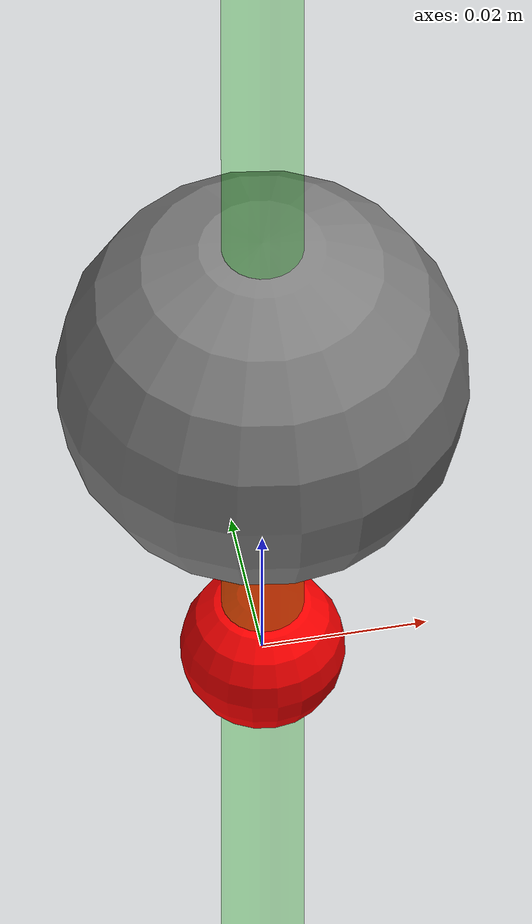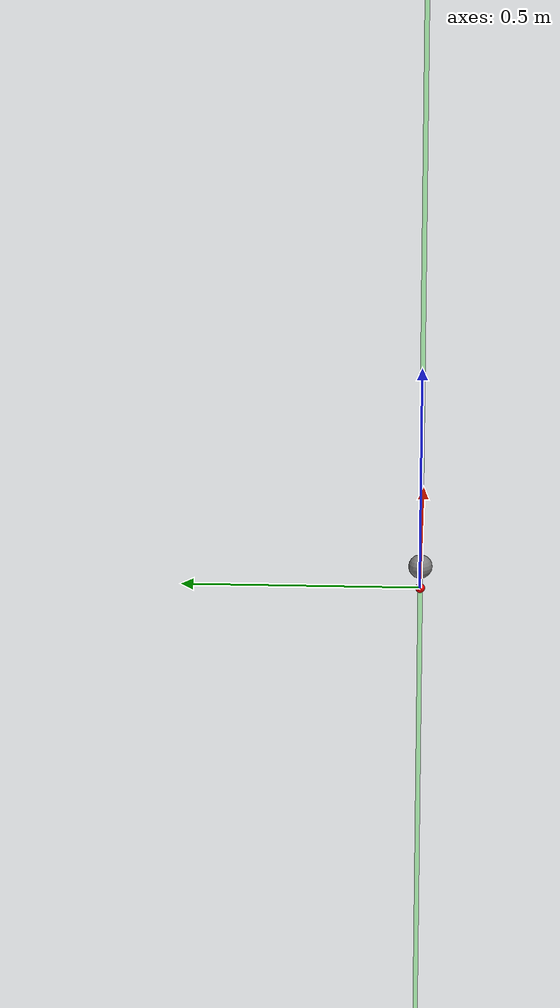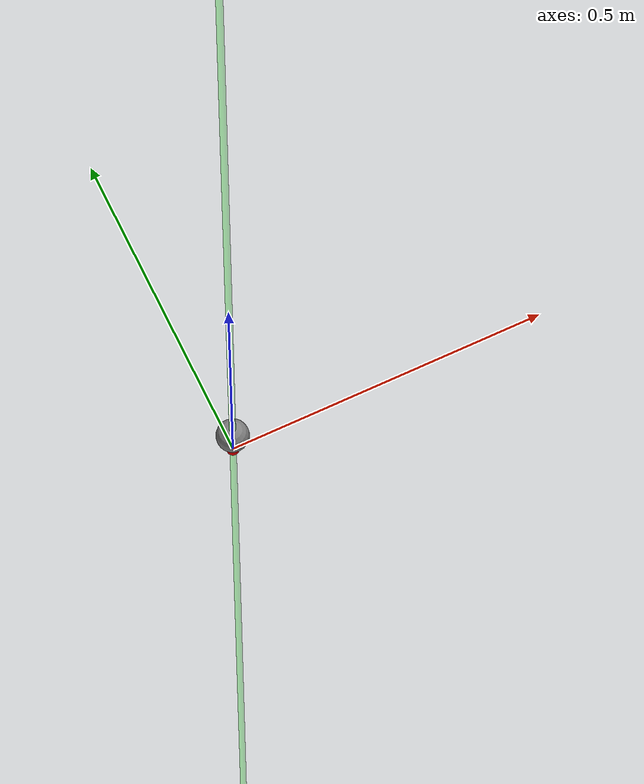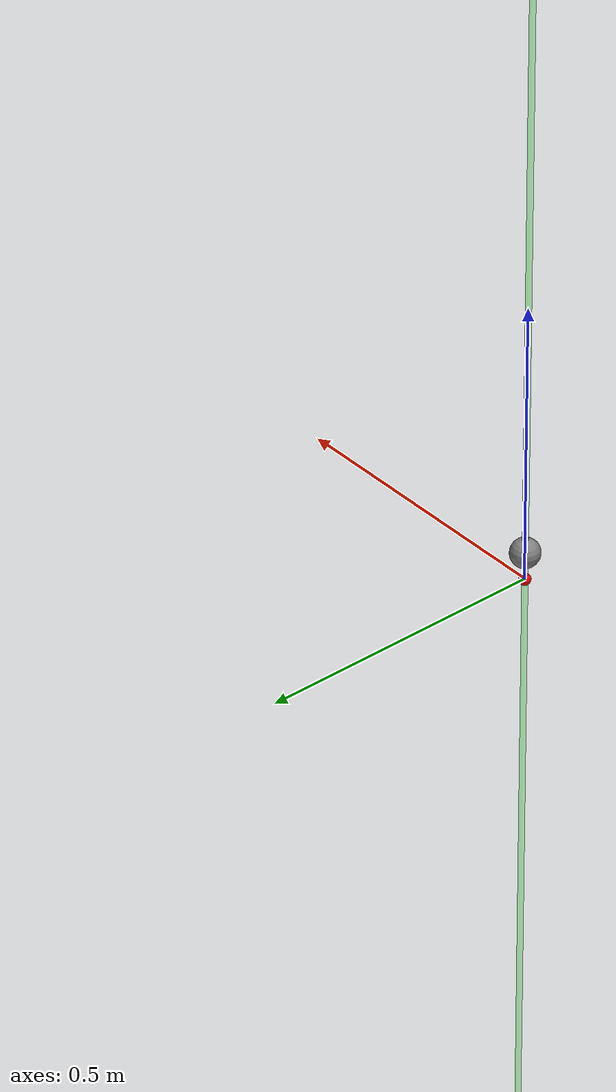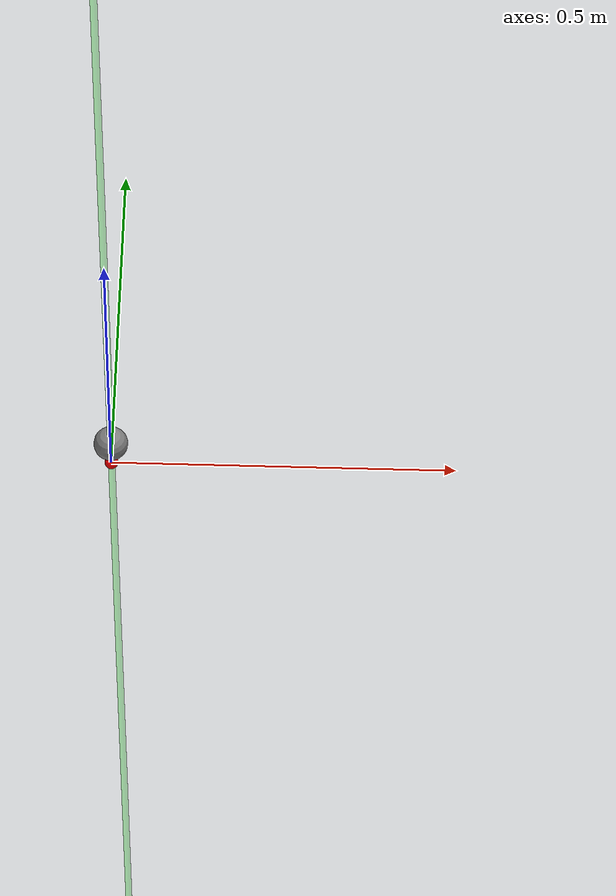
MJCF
<mujoco model="impact_hand">
    <worldbody>
        <body name="impact_body" pos="0 0 0">
            <site name="ft_frame" pos="0 0 0" size="0.01 0.01 0.01" rgba="1 0 0 1" type="sphere" group="1"/>
            <inertial pos="0 0 0" mass="0.0" diaginertia="0 0 0"/>
            <!-- This site was added for visualization. -->
            <body name="eef" pos="0 0 0" quat="0.707105 0 0 -0.707105">
                <site name="grip_site" pos="0 0 0" size="0.01 0.01 0.01" rgba="1 0 0 0.5" type="sphere" group="1"/>
                <site name="ee_x" pos="0.1 0 0" size="0.005 .1"  quat="0.707105  0 0.707108 0 " rgba="1 0 0 0" type="cylinder" group="1"/>
                <site name="ee_y" pos="0 0.1 0" size="0.005 .1" quat="0.707105 0.707108 0 0" rgba="0 1 0 0" type="cylinder" group="1"/>
                <site name="ee_z" pos="0 0 0.1" size="0.005 .1" quat="1 0 0 0" rgba="0 0 1 0" type="cylinder" group="1"/>
                <!-- This site was added for visualization. -->
                <site name="grip_site_cylinder" pos="0 0 0" size="0.005 10" rgba="0 1 0 0.3" type="cylinder" group="1"/>
            </body>
            <body name="ball" pos="0 0 0.05">
                <geom type="sphere" mass="0.1" size="0.025" solref="0.01 0.1" condim="4" priority="1" group="0"/>
                <!-- Visual geometry - slightly transparent blue -->
                <geom type="sphere" size="0.025" rgba="0 0.5 1 0.7" group="1"/>
            </body>
        </body>
    </worldbody>
    <sensor>
        <force name="force_ee" site="ft_frame"/>
        <torque name="torque_ee" site="ft_frame"/>
    </sensor>
</mujoco>
